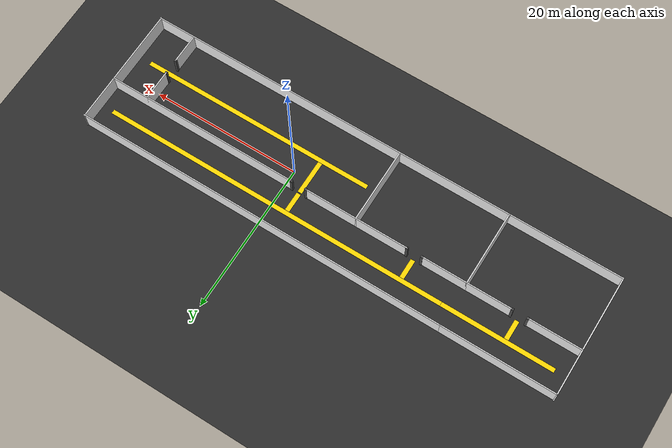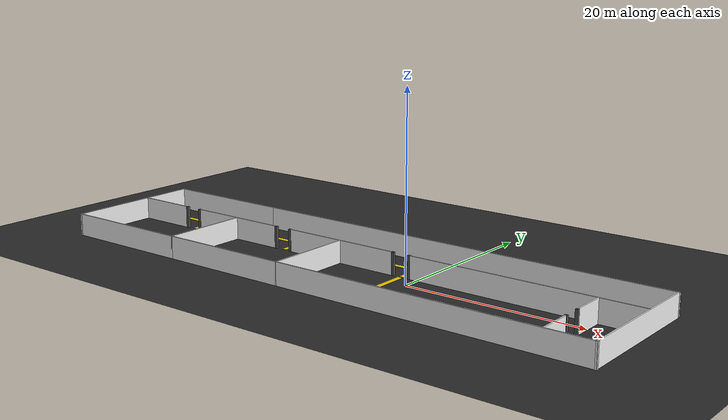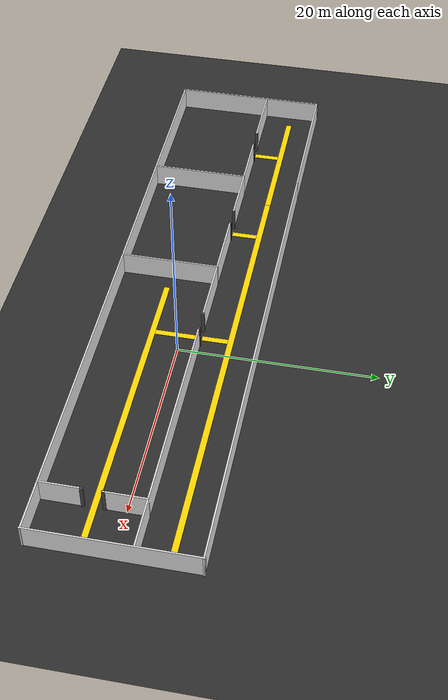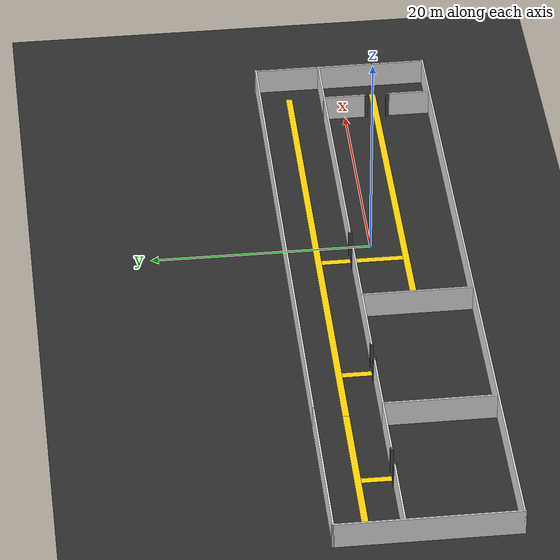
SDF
<sdf version='1.7'>
  <world name='multi_room_world'>
    <light name='sun' type='directional'>
      <cast_shadows>1</cast_shadows>
      <pose>0 0 10 0 -0 0</pose>
      <diffuse>0.8 0.8 0.8 1</diffuse>
      <specular>0.2 0.2 0.2 1</specular>
      <attenuation>
        <range>1000</range>
        <constant>0.9</constant>
        <linear>0.01</linear>
        <quadratic>0.001</quadratic>
      </attenuation>
      <direction>-0.5 0.1 -0.9</direction>
      <spot>
        <inner_angle>0</inner_angle>
        <outer_angle>0</outer_angle>
        <falloff>0</falloff>
      </spot>
    </light>
    <model name='ground_plane'>
      <static>1</static>
      <link name='link'>
        <collision name='collision'>
          <geometry>
            <plane>
              <normal>0 0 1</normal>
              <size>100 100</size>
            </plane>
          </geometry>
          <surface>
            <friction>
              <ode>
                <mu>100</mu>
                <mu2>50</mu2>
              </ode>
              <torsional>
                <ode/>
              </torsional>
            </friction>
            <contact>
              <ode/>
            </contact>
            <bounce/>
          </surface>
          <max_contacts>10</max_contacts>
        </collision>
        <visual name='visual'>
          <cast_shadows>0</cast_shadows>
          <geometry>
            <plane>
              <normal>0 0 1</normal>
              <size>100 100</size>
            </plane>
          </geometry>
          <material>
            <ambient>0.12 0.12 0.12 1</ambient>
            <diffuse>0.18 0.18 0.18 1</diffuse>
            <specular>0.01 0.01 0.01 1</specular>
          </material>
        </visual>
        <self_collide>0</self_collide>
        <enable_wind>0</enable_wind>
        <kinematic>0</kinematic>
      </link>
    </model>
    <gravity>0 0 -9.8</gravity>
    <physics type='ode'>
      <max_step_size>0.001</max_step_size>
      <real_time_factor>1</real_time_factor>
      <real_time_update_rate>1000</real_time_update_rate>
    </physics>
    <scene>
      <ambient>0.45 0.45 0.45 1</ambient>
      <background>0.55 0.55 0.55 1</background>
      <shadows>1</shadows>
    </scene>
    <model name='environment'>
      <static>1</static>
      <pose>0 0 0 0 -0 0</pose>
      <link name='north_wall'>
        <pose>0 8 1.25 0 -0 0</pose>
        <collision name='col'>
          <geometry>
            <box>
              <size>50.3 0.15 2.5</size>
            </box>
          </geometry>
          <max_contacts>10</max_contacts>
          <surface>
            <contact>
              <ode/>
            </contact>
            <bounce/>
            <friction>
              <torsional>
                <ode/>
              </torsional>
              <ode/>
            </friction>
          </surface>
        </collision>
        <visual name='vis'>
          <geometry>
            <box>
              <size>50.3 0.15 2.5</size>
            </box>
          </geometry>
          <material>
            <script>
              <uri>file://media/materials/scripts/gazebo.material</uri>
              <name>Gazebo/White</name>
            </script>
          </material>
        </visual>
        <self_collide>0</self_collide>
        <enable_wind>0</enable_wind>
        <kinematic>0</kinematic>
      </link>
      <link name='south_wall'>
        <pose>0 -8 1.25 0 -0 0</pose>
        <collision name='col'>
          <geometry>
            <box>
              <size>50.3 0.15 2.5</size>
            </box>
          </geometry>
          <max_contacts>10</max_contacts>
          <surface>
            <contact>
              <ode/>
            </contact>
            <bounce/>
            <friction>
              <torsional>
                <ode/>
              </torsional>
              <ode/>
            </friction>
          </surface>
        </collision>
        <visual name='vis'>
          <geometry>
            <box>
              <size>50.3 0.15 2.5</size>
            </box>
          </geometry>
          <material>
            <script>
              <uri>file://media/materials/scripts/gazebo.material</uri>
              <name>Gazebo/White</name>
            </script>
          </material>
        </visual>
        <self_collide>0</self_collide>
        <enable_wind>0</enable_wind>
        <kinematic>0</kinematic>
      </link>
      <link name='west_wall_A'>
        <pose>-25 -3 1.25 0 -0 0</pose>
        <collision name='col'>
          <geometry>
            <box>
              <size>0.15 10.15 2.5</size>
            </box>
          </geometry>
          <max_contacts>10</max_contacts>
          <surface>
            <contact>
              <ode/>
            </contact>
            <bounce/>
            <friction>
              <torsional>
                <ode/>
              </torsional>
              <ode/>
            </friction>
          </surface>
        </collision>
        <visual name='vis'>
          <geometry>
            <box>
              <size>0.15 10.15 2.5</size>
            </box>
          </geometry>
          <material>
            <script>
              <uri>file://media/materials/scripts/gazebo.material</uri>
              <name>Gazebo/White</name>
            </script>
          </material>
        </visual>
        <self_collide>0</self_collide>
        <enable_wind>0</enable_wind>
        <kinematic>0</kinematic>
      </link>
      <link name='left_room_north_wall'>
        <pose>-32.5 8 1.25 0 -0 0</pose>
        <collision name='col'>
          <geometry>
            <box>
              <size>15.15 0.15 2.5</size>
            </box>
          </geometry>
          <max_contacts>10</max_contacts>
          <surface>
            <contact>
              <ode/>
            </contact>
            <bounce/>
            <friction>
              <torsional>
                <ode/>
              </torsional>
              <ode/>
            </friction>
          </surface>
        </collision>
        <visual name='vis'>
          <geometry>
            <box>
              <size>15.15 0.15 2.5</size>
            </box>
          </geometry>
          <material>
            <script>
              <uri>file://media/materials/scripts/gazebo.material</uri>
              <name>Gazebo/White</name>
            </script>
          </material>
        </visual>
        <self_collide>0</self_collide>
        <enable_wind>0</enable_wind>
        <kinematic>0</kinematic>
      </link>
      <link name='left_room_west_wall'>
        <pose>-40 0 1.25 0 -0 0</pose>
        <collision name='col'>
          <geometry>
            <box>
              <size>0.15 16.3 2.5</size>
            </box>
          </geometry>
          <max_contacts>10</max_contacts>
          <surface>
            <contact>
              <ode/>
            </contact>
            <bounce/>
            <friction>
              <torsional>
                <ode/>
              </torsional>
              <ode/>
            </friction>
          </surface>
        </collision>
        <visual name='vis'>
          <geometry>
            <box>
              <size>0.15 16.3 2.5</size>
            </box>
          </geometry>
          <material>
            <script>
              <uri>file://media/materials/scripts/gazebo.material</uri>
              <name>Gazebo/White</name>
            </script>
          </material>
        </visual>
        <self_collide>0</self_collide>
        <enable_wind>0</enable_wind>
        <kinematic>0</kinematic>
      </link>
      <link name='left_room_south_wall'>
        <pose>-32.5 -8 1.25 0 -0 0</pose>
        <collision name='col'>
          <geometry>
            <box>
              <size>15.15 0.15 2.5</size>
            </box>
          </geometry>
          <max_contacts>10</max_contacts>
          <surface>
            <contact>
              <ode/>
            </contact>
            <bounce/>
            <friction>
              <torsional>
                <ode/>
              </torsional>
              <ode/>
            </friction>
          </surface>
        </collision>
        <visual name='vis'>
          <geometry>
            <box>
              <size>15.15 0.15 2.5</size>
            </box>
          </geometry>
          <material>
            <script>
              <uri>file://media/materials/scripts/gazebo.material</uri>
              <name>Gazebo/White</name>
            </script>
          </material>
        </visual>
        <self_collide>0</self_collide>
        <enable_wind>0</enable_wind>
        <kinematic>0</kinematic>
      </link>
      <link name='left_room_horiz_A'>
        <pose>-36.5 2 1.25 0 -0 0</pose>
        <collision name='col'>
          <geometry>
            <box>
              <size>7 0.15 2.5</size>
            </box>
          </geometry>
          <max_contacts>10</max_contacts>
          <surface>
            <contact>
              <ode/>
            </contact>
            <bounce/>
            <friction>
              <torsional>
                <ode/>
              </torsional>
              <ode/>
            </friction>
          </surface>
        </collision>
        <visual name='vis'>
          <geometry>
            <box>
              <size>7 0.15 2.5</size>
            </box>
          </geometry>
          <material>
            <script>
              <uri>file://media/materials/scripts/gazebo.material</uri>
              <name>Gazebo/White</name>
            </script>
          </material>
        </visual>
        <self_collide>0</self_collide>
        <enable_wind>0</enable_wind>
        <kinematic>0</kinematic>
      </link>
      <link name='left_room_horiz_B'>
        <pose>-28 2 1.25 0 -0 0</pose>
        <collision name='col'>
          <geometry>
            <box>
              <size>6 0.15 2.5</size>
            </box>
          </geometry>
          <max_contacts>10</max_contacts>
          <surface>
            <contact>
              <ode/>
            </contact>
            <bounce/>
            <friction>
              <torsional>
                <ode/>
              </torsional>
              <ode/>
            </friction>
          </surface>
        </collision>
        <visual name='vis'>
          <geometry>
            <box>
              <size>6 0.15 2.5</size>
            </box>
          </geometry>
          <material>
            <script>
              <uri>file://media/materials/scripts/gazebo.material</uri>
              <name>Gazebo/White</name>
            </script>
          </material>
        </visual>
        <self_collide>0</self_collide>
        <enable_wind>0</enable_wind>
        <kinematic>0</kinematic>
      </link>
      <link name='door4_pillar_left'>
        <pose>-33 2 1.25 0 -0 0</pose>
        <collision name='col'>
          <geometry>
            <box>
              <size>0.3 0.3 2.5</size>
            </box>
          </geometry>
          <max_contacts>10</max_contacts>
          <surface>
            <contact>
              <ode/>
            </contact>
            <bounce/>
            <friction>
              <torsional>
                <ode/>
              </torsional>
              <ode/>
            </friction>
          </surface>
        </collision>
        <visual name='vis'>
          <geometry>
            <box>
              <size>0.3 0.3 2.5</size>
            </box>
          </geometry>
          <material>
            <ambient>0.25 0.25 0.25 1</ambient>
            <diffuse>0.3 0.3 0.3 1</diffuse>
          </material>
        </visual>
        <self_collide>0</self_collide>
        <enable_wind>0</enable_wind>
        <kinematic>0</kinematic>
      </link>
      <link name='door4_pillar_right'>
        <pose>-31 2 1.25 0 -0 0</pose>
        <collision name='col'>
          <geometry>
            <box>
              <size>0.3 0.3 2.5</size>
            </box>
          </geometry>
          <max_contacts>10</max_contacts>
          <surface>
            <contact>
              <ode/>
            </contact>
            <bounce/>
            <friction>
              <torsional>
                <ode/>
              </torsional>
              <ode/>
            </friction>
          </surface>
        </collision>
        <visual name='vis'>
          <geometry>
            <box>
              <size>0.3 0.3 2.5</size>
            </box>
          </geometry>
          <material>
            <ambient>0.25 0.25 0.25 1</ambient>
            <diffuse>0.3 0.3 0.3 1</diffuse>
          </material>
        </visual>
        <self_collide>0</self_collide>
        <enable_wind>0</enable_wind>
        <kinematic>0</kinematic>
      </link>
      <link name='east_wall'>
        <pose>25 0 1.25 0 -0 0</pose>
        <collision name='col'>
          <geometry>
            <box>
              <size>0.15 16.3 2.5</size>
            </box>
          </geometry>
          <max_contacts>10</max_contacts>
          <surface>
            <contact>
              <ode/>
            </contact>
            <bounce/>
            <friction>
              <torsional>
                <ode/>
              </torsional>
              <ode/>
            </friction>
          </surface>
        </collision>
        <visual name='vis'>
          <geometry>
            <box>
              <size>0.15 16.3 2.5</size>
            </box>
          </geometry>
          <material>
            <script>
              <uri>file://media/materials/scripts/gazebo.material</uri>
              <name>Gazebo/White</name>
            </script>
          </material>
        </visual>
        <self_collide>0</self_collide>
        <enable_wind>0</enable_wind>
        <kinematic>0</kinematic>
      </link>
      <link name='lower_zone_separator'>
        <pose>-10 -3 1.25 0 -0 0</pose>
        <collision name='col'>
          <geometry>
            <box>
              <size>0.15 10.15 2.5</size>
            </box>
          </geometry>
          <max_contacts>10</max_contacts>
          <surface>
            <contact>
              <ode/>
            </contact>
            <bounce/>
            <friction>
              <torsional>
                <ode/>
              </torsional>
              <ode/>
            </friction>
          </surface>
        </collision>
        <visual name='vis'>
          <geometry>
            <box>
              <size>0.15 10.15 2.5</size>
            </box>
          </geometry>
          <material>
            <script>
              <uri>file://media/materials/scripts/gazebo.material</uri>
              <name>Gazebo/White</name>
            </script>
          </material>
        </visual>
        <self_collide>0</self_collide>
        <enable_wind>0</enable_wind>
        <kinematic>0</kinematic>
      </link>
      <link name='horiz_wall_A'>
        <pose>-22 2 1.25 0 -0 0</pose>
        <collision name='col'>
          <geometry>
            <box>
              <size>6.15 0.15 2.5</size>
            </box>
          </geometry>
          <max_contacts>10</max_contacts>
          <surface>
            <contact>
              <ode/>
            </contact>
            <bounce/>
            <friction>
              <torsional>
                <ode/>
              </torsional>
              <ode/>
            </friction>
          </surface>
        </collision>
        <visual name='vis'>
          <geometry>
            <box>
              <size>6.15 0.15 2.5</size>
            </box>
          </geometry>
          <material>
            <script>
              <uri>file://media/materials/scripts/gazebo.material</uri>
              <name>Gazebo/White</name>
            </script>
          </material>
        </visual>
        <self_collide>0</self_collide>
        <enable_wind>0</enable_wind>
        <kinematic>0</kinematic>
      </link>
      <link name='horiz_wall_B'>
        <pose>-10 2 1.25 0 -0 0</pose>
        <collision name='col'>
          <geometry>
            <box>
              <size>14 0.15 2.5</size>
            </box>
          </geometry>
          <max_contacts>10</max_contacts>
          <surface>
            <contact>
              <ode/>
            </contact>
            <bounce/>
            <friction>
              <torsional>
                <ode/>
              </torsional>
              <ode/>
            </friction>
          </surface>
        </collision>
        <visual name='vis'>
          <geometry>
            <box>
              <size>14 0.15 2.5</size>
            </box>
          </geometry>
          <material>
            <script>
              <uri>file://media/materials/scripts/gazebo.material</uri>
              <name>Gazebo/White</name>
            </script>
          </material>
        </visual>
        <self_collide>0</self_collide>
        <enable_wind>0</enable_wind>
        <kinematic>0</kinematic>
      </link>
      <link name='horiz_wall_C'>
        <pose>12 2 1.25 0 -0 0</pose>
        <collision name='col'>
          <geometry>
            <box>
              <size>26 0.15 2.5</size>
            </box>
          </geometry>
          <max_contacts>10</max_contacts>
          <surface>
            <contact>
              <ode/>
            </contact>
            <bounce/>
            <friction>
              <torsional>
                <ode/>
              </torsional>
              <ode/>
            </friction>
          </surface>
        </collision>
        <visual name='vis'>
          <geometry>
            <box>
              <size>26 0.15 2.5</size>
            </box>
          </geometry>
          <material>
            <script>
              <uri>file://media/materials/scripts/gazebo.material</uri>
              <name>Gazebo/White</name>
            </script>
          </material>
        </visual>
        <self_collide>0</self_collide>
        <enable_wind>0</enable_wind>
        <kinematic>0</kinematic>
      </link>
      <link name='right_partial_wall_A'>
        <pose>20 -6 1.25 0 -0 0</pose>
        <collision name='col'>
          <geometry>
            <box>
              <size>0.15 4 2.5</size>
            </box>
          </geometry>
          <max_contacts>10</max_contacts>
          <surface>
            <contact>
              <ode/>
            </contact>
            <bounce/>
            <friction>
              <torsional>
                <ode/>
              </torsional>
              <ode/>
            </friction>
          </surface>
        </collision>
        <visual name='vis'>
          <geometry>
            <box>
              <size>0.15 4 2.5</size>
            </box>
          </geometry>
          <material>
            <script>
              <uri>file://media/materials/scripts/gazebo.material</uri>
              <name>Gazebo/White</name>
            </script>
          </material>
        </visual>
        <self_collide>0</self_collide>
        <enable_wind>0</enable_wind>
        <kinematic>0</kinematic>
      </link>
      <link name='right_partial_wall_B'>
        <pose>20 0 1.25 0 -0 0</pose>
        <collision name='col'>
          <geometry>
            <box>
              <size>0.15 4.15 2.5</size>
            </box>
          </geometry>
          <max_contacts>10</max_contacts>
          <surface>
            <contact>
              <ode/>
            </contact>
            <bounce/>
            <friction>
              <torsional>
                <ode/>
              </torsional>
              <ode/>
            </friction>
          </surface>
        </collision>
        <visual name='vis'>
          <geometry>
            <box>
              <size>0.15 4.15 2.5</size>
            </box>
          </geometry>
          <material>
            <script>
              <uri>file://media/materials/scripts/gazebo.material</uri>
              <name>Gazebo/White</name>
            </script>
          </material>
        </visual>
        <self_collide>0</self_collide>
        <enable_wind>0</enable_wind>
        <kinematic>0</kinematic>
      </link>
      <link name='door1_pillar_left'>
        <pose>-19 2 1.25 0 -0 0</pose>
        <collision name='col'>
          <geometry>
            <box>
              <size>0.3 0.3 2.5</size>
            </box>
          </geometry>
          <max_contacts>10</max_contacts>
          <surface>
            <contact>
              <ode/>
            </contact>
            <bounce/>
            <friction>
              <torsional>
                <ode/>
              </torsional>
              <ode/>
            </friction>
          </surface>
        </collision>
        <visual name='vis'>
          <geometry>
            <box>
              <size>0.3 0.3 2.5</size>
            </box>
          </geometry>
          <material>
            <ambient>0.25 0.25 0.25 1</ambient>
            <diffuse>0.3 0.3 0.3 1</diffuse>
          </material>
        </visual>
        <self_collide>0</self_collide>
        <enable_wind>0</enable_wind>
        <kinematic>0</kinematic>
      </link>
      <link name='door1_pillar_right'>
        <pose>-17 2 1.25 0 -0 0</pose>
        <collision name='col'>
          <geometry>
            <box>
              <size>0.3 0.3 2.5</size>
            </box>
          </geometry>
          <max_contacts>10</max_contacts>
          <surface>
            <contact>
              <ode/>
            </contact>
            <bounce/>
            <friction>
              <torsional>
                <ode/>
              </torsional>
              <ode/>
            </friction>
          </surface>
        </collision>
        <visual name='vis'>
          <geometry>
            <box>
              <size>0.3 0.3 2.5</size>
            </box>
          </geometry>
          <material>
            <ambient>0.25 0.25 0.25 1</ambient>
            <diffuse>0.3 0.3 0.3 1</diffuse>
          </material>
        </visual>
        <self_collide>0</self_collide>
        <enable_wind>0</enable_wind>
        <kinematic>0</kinematic>
      </link>
      <link name='door2_pillar_left'>
        <pose>-3 2 1.25 0 -0 0</pose>
        <collision name='col'>
          <geometry>
            <box>
              <size>0.3 0.3 2.5</size>
            </box>
          </geometry>
          <max_contacts>10</max_contacts>
          <surface>
            <contact>
              <ode/>
            </contact>
            <bounce/>
            <friction>
              <torsional>
                <ode/>
              </torsional>
              <ode/>
            </friction>
          </surface>
        </collision>
        <visual name='vis'>
          <geometry>
            <box>
              <size>0.3 0.3 2.5</size>
            </box>
          </geometry>
          <material>
            <ambient>0.25 0.25 0.25 1</ambient>
            <diffuse>0.3 0.3 0.3 1</diffuse>
          </material>
        </visual>
        <self_collide>0</self_collide>
        <enable_wind>0</enable_wind>
        <kinematic>0</kinematic>
      </link>
      <link name='door2_pillar_right'>
        <pose>-1 2 1.25 0 -0 0</pose>
        <collision name='col'>
          <geometry>
            <box>
              <size>0.3 0.3 2.5</size>
            </box>
          </geometry>
          <max_contacts>10</max_contacts>
          <surface>
            <contact>
              <ode/>
            </contact>
            <bounce/>
            <friction>
              <torsional>
                <ode/>
              </torsional>
              <ode/>
            </friction>
          </surface>
        </collision>
        <visual name='vis'>
          <geometry>
            <box>
              <size>0.3 0.3 2.5</size>
            </box>
          </geometry>
          <material>
            <ambient>0.25 0.25 0.25 1</ambient>
            <diffuse>0.3 0.3 0.3 1</diffuse>
          </material>
        </visual>
        <self_collide>0</self_collide>
        <enable_wind>0</enable_wind>
        <kinematic>0</kinematic>
      </link>
      <link name='door3_pillar_bottom'>
        <pose>20 -4 1.25 0 -0 0</pose>
        <collision name='col'>
          <geometry>
            <box>
              <size>0.3 0.3 2.5</size>
            </box>
          </geometry>
          <max_contacts>10</max_contacts>
          <surface>
            <contact>
              <ode/>
            </contact>
            <bounce/>
            <friction>
              <torsional>
                <ode/>
              </torsional>
              <ode/>
            </friction>
          </surface>
        </collision>
        <visual name='vis'>
          <geometry>
            <box>
              <size>0.3 0.3 2.5</size>
            </box>
          </geometry>
          <material>
            <ambient>0.25 0.25 0.25 1</ambient>
            <diffuse>0.3 0.3 0.3 1</diffuse>
          </material>
        </visual>
        <self_collide>0</self_collide>
        <enable_wind>0</enable_wind>
        <kinematic>0</kinematic>
      </link>
      <link name='door3_pillar_top'>
        <pose>20 -2 1.25 0 -0 0</pose>
        <collision name='col'>
          <geometry>
            <box>
              <size>0.3 0.3 2.5</size>
            </box>
          </geometry>
          <max_contacts>10</max_contacts>
          <surface>
            <contact>
              <ode/>
            </contact>
            <bounce/>
            <friction>
              <torsional>
                <ode/>
              </torsional>
              <ode/>
            </friction>
          </surface>
        </collision>
        <visual name='vis'>
          <geometry>
            <box>
              <size>0.3 0.3 2.5</size>
            </box>
          </geometry>
          <material>
            <ambient>0.25 0.25 0.25 1</ambient>
            <diffuse>0.3 0.3 0.3 1</diffuse>
          </material>
        </visual>
        <self_collide>0</self_collide>
        <enable_wind>0</enable_wind>
        <kinematic>0</kinematic>
      </link>
    </model>
    <model name='floor_upper_horiz'>
      <static>1</static>
      <pose>0 5 0.005 0 -0 0</pose>
      <link name='link'>
        <visual name='vis'>
          <geometry>
            <box>
              <size>47 0.6 0.01</size>
            </box>
          </geometry>
          <material>
            <ambient>1 0.85 0 1</ambient>
            <diffuse>1 0.85 0 1</diffuse>
          </material>
        </visual>
        <self_collide>0</self_collide>
        <enable_wind>0</enable_wind>
        <kinematic>0</kinematic>
      </link>
    </model>
    <model name='floor_upper_left_room'>
      <static>1</static>
      <pose>-31 5 0.005 0 -0 0</pose>
      <link name='link'>
        <visual name='vis'>
          <geometry>
            <box>
              <size>15 0.6 0.01</size>
            </box>
          </geometry>
          <material>
            <ambient>1 0.85 0 1</ambient>
            <diffuse>1 0.85 0 1</diffuse>
          </material>
        </visual>
        <self_collide>0</self_collide>
        <enable_wind>0</enable_wind>
        <kinematic>0</kinematic>
      </link>
    </model>
    <model name='floor_lower_horiz'>
      <static>1</static>
      <pose>7.5 -3 0.005 0 -0 0</pose>
      <link name='link'>
        <visual name='vis'>
          <geometry>
            <box>
              <size>32 0.6 0.01</size>
            </box>
          </geometry>
          <material>
            <ambient>1 0.85 0 1</ambient>
            <diffuse>1 0.85 0 1</diffuse>
          </material>
        </visual>
        <self_collide>0</self_collide>
        <enable_wind>0</enable_wind>
        <kinematic>0</kinematic>
      </link>
    </model>
    <model name='floor_connector_door1_up'>
      <static>1</static>
      <pose>-18 3.39 0.005 0 -0 0</pose>
      <link name='link'>
        <visual name='vis'>
          <geometry>
            <box>
              <size>0.6 2.625 0.01</size>
            </box>
          </geometry>
          <material>
            <ambient>1 0.85 0 1</ambient>
            <diffuse>1 0.85 0 1</diffuse>
          </material>
        </visual>
        <self_collide>0</self_collide>
        <enable_wind>0</enable_wind>
        <kinematic>0</kinematic>
      </link>
    </model>
    <model name='floor_connector_door2_up'>
      <static>1</static>
      <pose>-2 3.39 0.005 0 -0 0</pose>
      <link name='link'>
        <visual name='vis'>
          <geometry>
            <box>
              <size>0.6 2.625 0.01</size>
            </box>
          </geometry>
          <material>
            <ambient>1 0.85 0 1</ambient>
            <diffuse>1 0.85 0 1</diffuse>
          </material>
        </visual>
        <self_collide>0</self_collide>
        <enable_wind>0</enable_wind>
        <kinematic>0</kinematic>
      </link>
    </model>
    <model name='floor_connector_door2_down'>
      <static>1</static>
      <pose>-2 -0.39 0.005 0 -0 0</pose>
      <link name='link'>
        <visual name='vis'>
          <geometry>
            <box>
              <size>0.6 4.625 0.01</size>
            </box>
          </geometry>
          <material>
            <ambient>1 0.85 0 1</ambient>
            <diffuse>1 0.85 0 1</diffuse>
          </material>
        </visual>
        <self_collide>0</self_collide>
        <enable_wind>0</enable_wind>
        <kinematic>0</kinematic>
      </link>
    </model>
    <model name='floor_connector_door4_up'>
      <static>1</static>
      <pose>-32 3.39 0.005 0 -0 0</pose>
      <link name='link'>
        <visual name='vis'>
          <geometry>
            <box>
              <size>0.6 2.625 0.01</size>
            </box>
          </geometry>
          <material>
            <ambient>1 0.85 0 1</ambient>
            <diffuse>1 0.85 0 1</diffuse>
          </material>
        </visual>
        <self_collide>0</self_collide>
        <enable_wind>0</enable_wind>
        <kinematic>0</kinematic>
      </link>
    </model>
    <gui fullscreen='0'>
      <camera name='user_camera'>
        <pose>-28.7229 -18.5954 44.5521 0 1.2 1.57</pose>
        <view_controller>orbit</view_controller>
        <projection_type>perspective</projection_type>
      </camera>
    </gui>
  </world>
</sdf>
